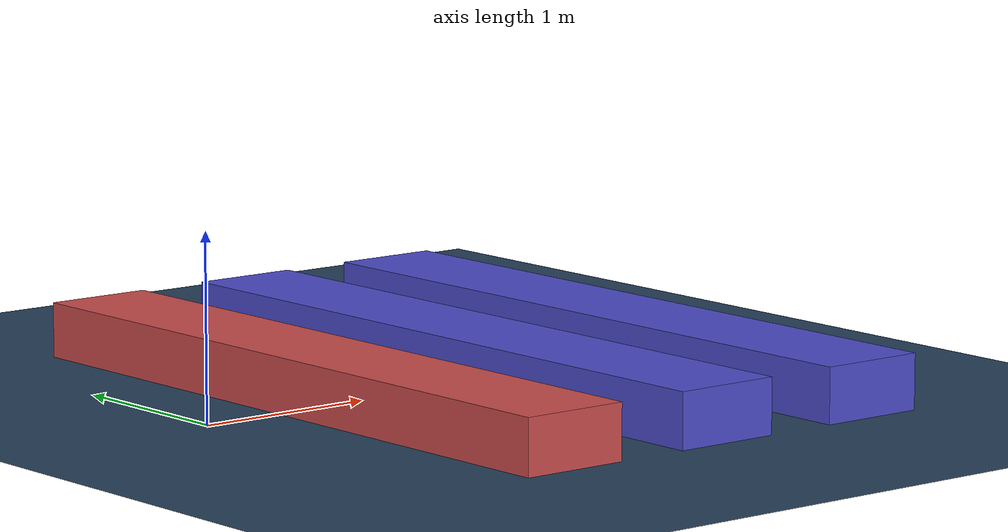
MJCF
<mujoco model="ground">
  <compiler angle="radian" meshdir="meshes"/>
  <!-- setup scene -->
  <statistic center="1.0 0.7 1.0" extent="0.8"/>
  <visual>
    <headlight diffuse="0.6 0.6 0.6" ambient="0.1 0.1 0.1" specular="0.9 0.9 0.9"/>
    <rgba haze="0.15 0.25 0.35 1"/>
    <global azimuth="-140" elevation="-20"/>
  </visual>
  <asset>
    <texture type="skybox" builtin="flat" rgb1="0 0 0" rgb2="0 0 0" width="512" height="3072"/>
    <texture type="2d" name="groundplane" builtin="checker" mark="edge" rgb1="0.2 0.3 0.4" rgb2="0.1 0.2 0.3" markrgb="0.8 0.8 0.8" width="300" height="300"/>
    <material name="groundplane" texture="groundplane" texuniform="true" texrepeat="5 5" reflectance="0.2"/>
  </asset>

  <worldbody>
    <light pos="1 0 3.5" dir="0 0 -1" directional="true"/>
    <geom name="floor" size="0 0 0.05" type="plane" material="groundplane"/>

    <!-- Two rectangular boxes with 0.2m interval -->
    <geom name="box1" type="box" size="0.30 2.0 0.15" pos="0.75 0.0 0.15" rgba="0.8 0.3 0.3 1"/>
    <geom name="box2" type="box" size="0.30 2.0 0.15" pos="1.75 0.0 0.15" rgba="0.3 0.3 0.8 1"/>
    <geom name="box3" type="box" size="0.30 2.0 0.15" pos="2.75 0.0 0.15" rgba="0.3 0.3 0.8 1"/>

  </worldbody>
</mujoco>
